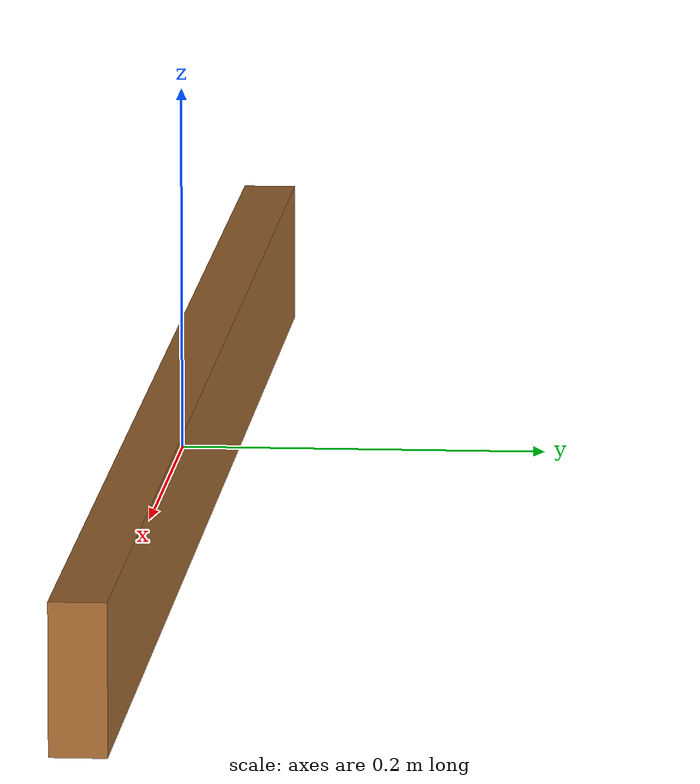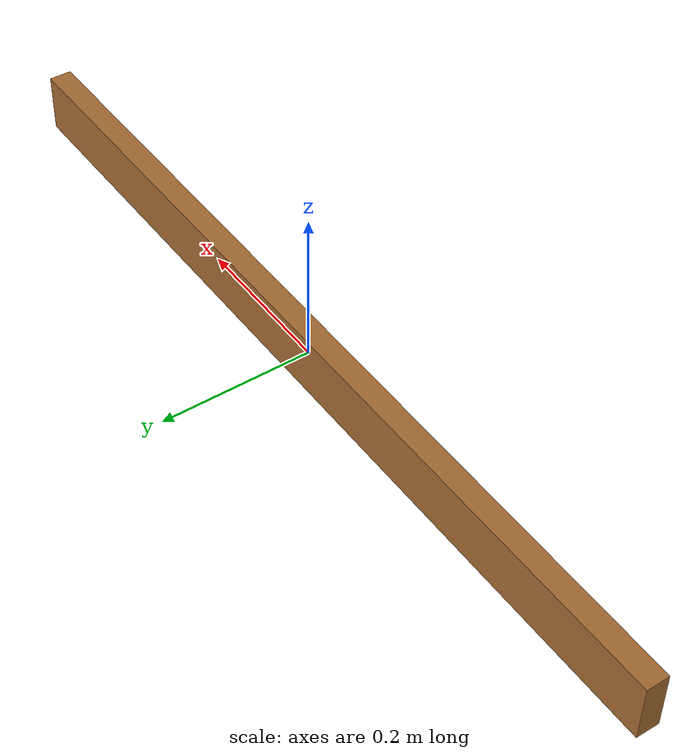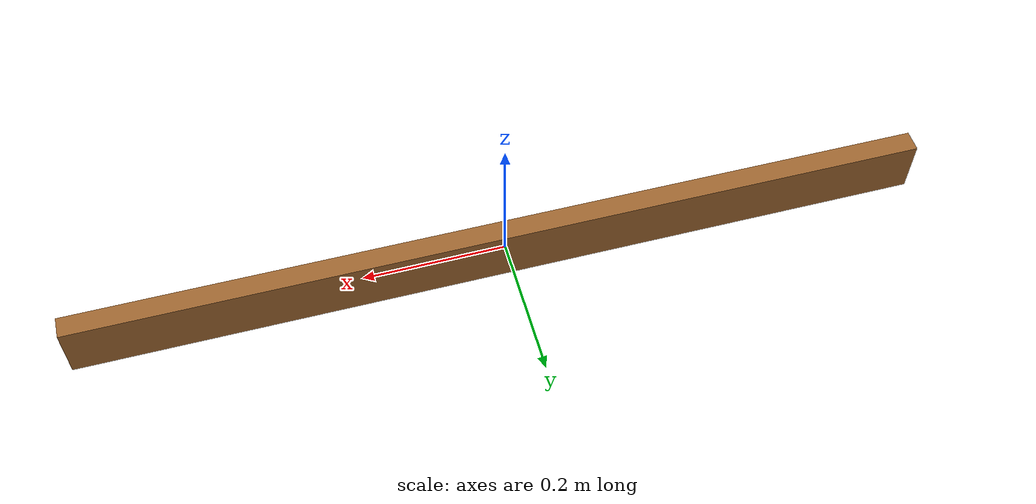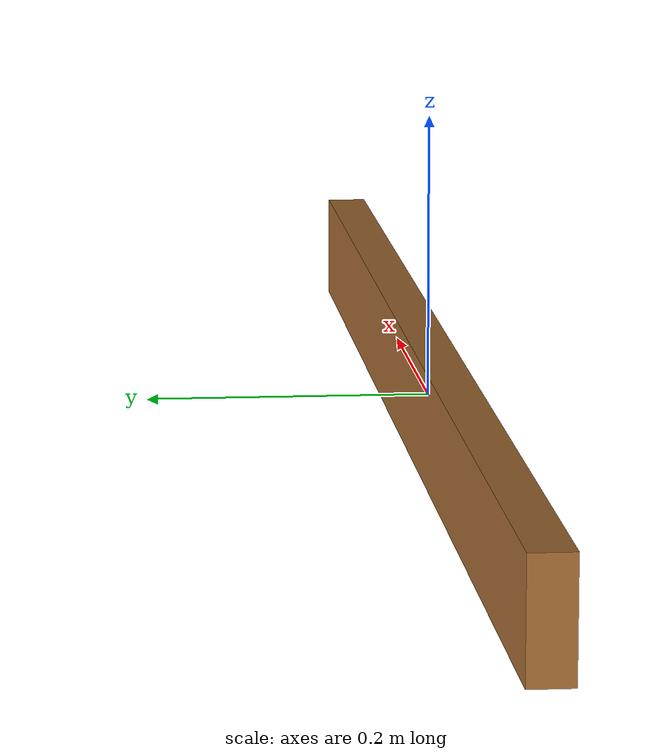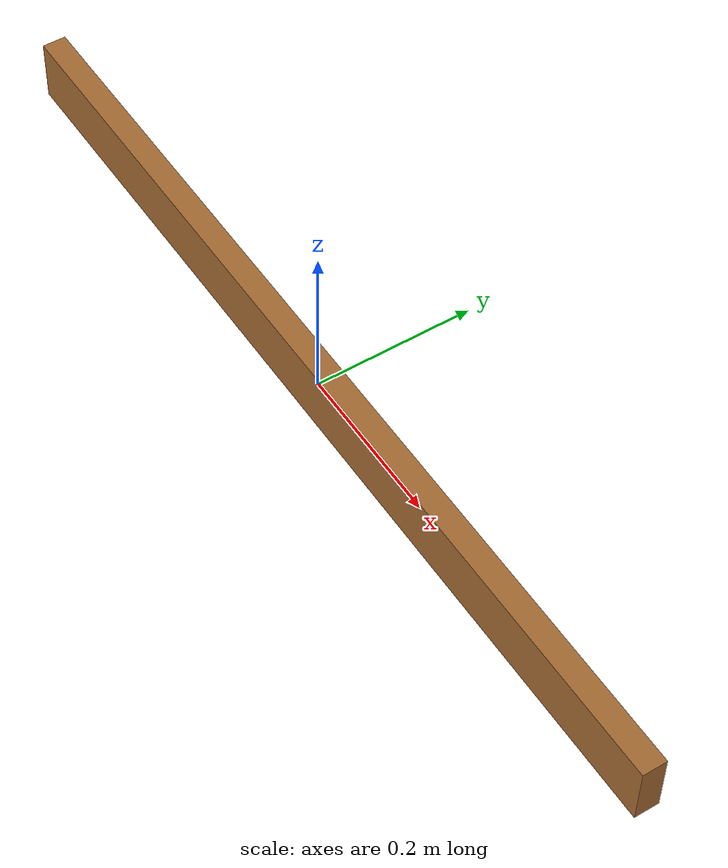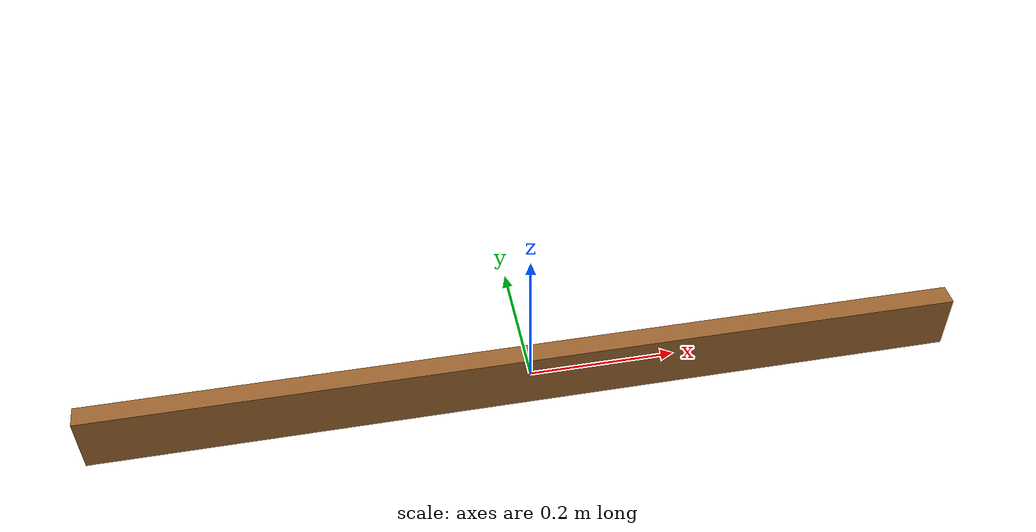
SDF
<?xml version="1.0"?>
<sdf version="1.8">
  <model name="cooperative_payload">
    <static>false</static>
    <self_collide>false</self_collide>
    <allow_auto_disable>false</allow_auto_disable>

    <link name="payload_link">
      <inertial>
        <mass>8.0</mass>
        <!-- Solid box, size 1.20 x 0.03 x 0.08 m. The 30 mm grasp
             thickness fits between the existing AMIR fingers. -->
        <inertia>
          <ixx>0.004867</ixx>
          <iyy>0.964267</iyy>
          <izz>0.960600</izz>
          <ixy>0.0</ixy>
          <ixz>0.0</ixz>
          <iyz>0.0</iyz>
        </inertia>
      </inertial>
      <visual name="payload_visual">
        <geometry><box><size>1.20 0.03 0.08</size></box></geometry>
        <material>
          <ambient>0.55 0.35 0.18 1</ambient>
          <diffuse>0.65 0.42 0.20 1</diffuse>
        </material>
      </visual>
      <collision name="payload_collision">
        <!-- Keep collision geometry at both ends so closing the two physical
             grippers makes contact before the transport joint is attached. -->
        <geometry><box><size>1.20 0.03 0.08</size></box></geometry>
        <surface>
          <friction><ode><mu>1.5</mu><mu2>1.5</mu2></ode></friction>
          <contact><ode><kp>1000000</kp><kd>100</kd><max_vel>0.05</max_vel><min_depth>0.001</min_depth></ode></contact>
        </surface>
      </collision>
    </link>

    <link name="grasp_r1_link">
      <pose>-0.6795 0 0 0 0 0</pose>
      <inertial><mass>0.01</mass><inertia><ixx>0.00001</ixx><iyy>0.00001</iyy><izz>0.00001</izz></inertia></inertial>
    </link>
    <joint name="payload_to_grasp_r1" type="fixed">
      <parent>payload_link</parent><child>grasp_r1_link</child>
    </joint>

    <link name="grasp_r2_link">
      <pose>0.6795 0 0 0 0 0</pose>
      <inertial><mass>0.01</mass><inertia><ixx>0.00001</ixx><iyy>0.00001</iyy><izz>0.00001</izz></inertia></inertial>
    </link>
    <joint name="payload_to_grasp_r2" type="fixed">
      <parent>payload_link</parent><child>grasp_r2_link</child>
    </joint>

    <!-- Fortress / ign-gazebo6 plugin names intentionally differ from Harmonic. -->
    <plugin filename="ignition-gazebo-detachable-joint-system"
            name="ignition::gazebo::systems::DetachableJoint">
      <parent_link>grasp_r1_link</parent_link>
      <child_model>amir1</child_model>
      <child_link>gripper_base_1</child_link>
      <attach_topic>/amir1/grasp/attach</attach_topic>
      <detach_topic>/amir1/grasp/detach</detach_topic>
      <output_topic>/amir1/grasp/state</output_topic>
      <suppress_child_warning>true</suppress_child_warning>
    </plugin>

    <plugin filename="ignition-gazebo-detachable-joint-system"
            name="ignition::gazebo::systems::DetachableJoint">
      <parent_link>grasp_r2_link</parent_link>
      <child_model>amir2</child_model>
      <child_link>gripper_base_1</child_link>
      <attach_topic>/amir2/grasp/attach</attach_topic>
      <detach_topic>/amir2/grasp/detach</detach_topic>
      <output_topic>/amir2/grasp/state</output_topic>
      <suppress_child_warning>true</suppress_child_warning>
    </plugin>
  </model>
</sdf>
